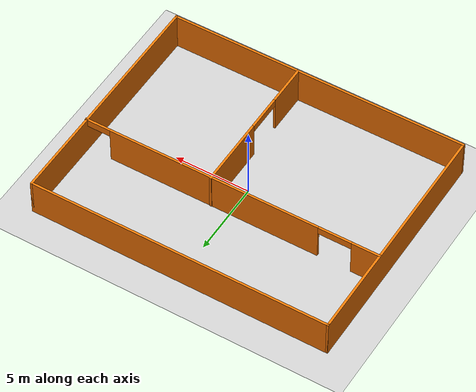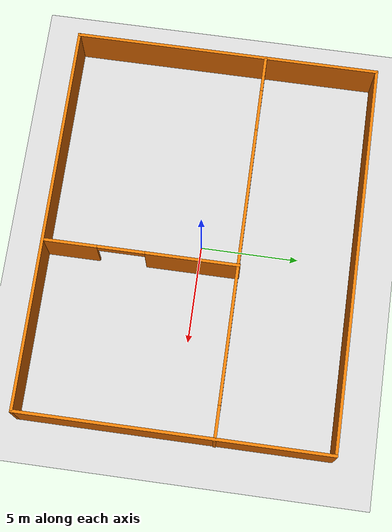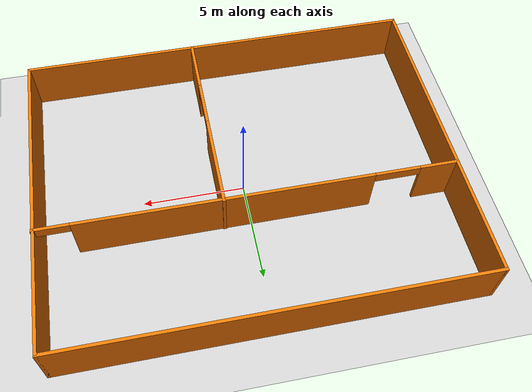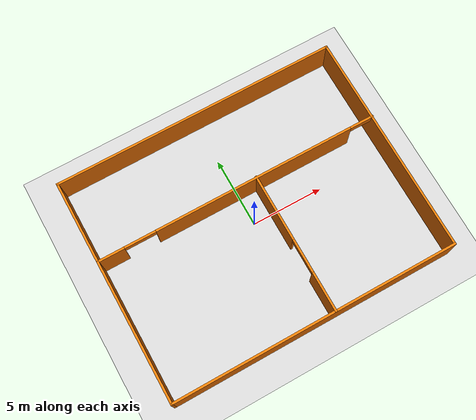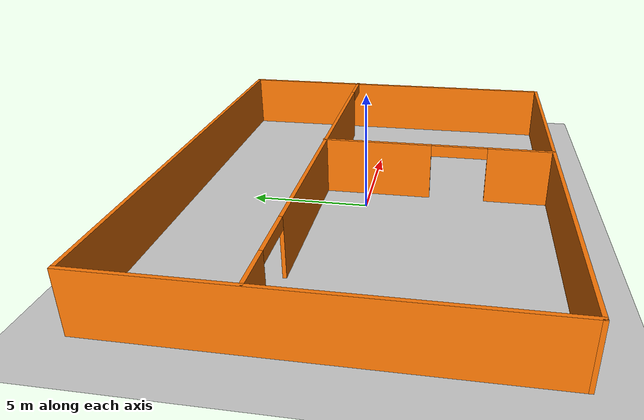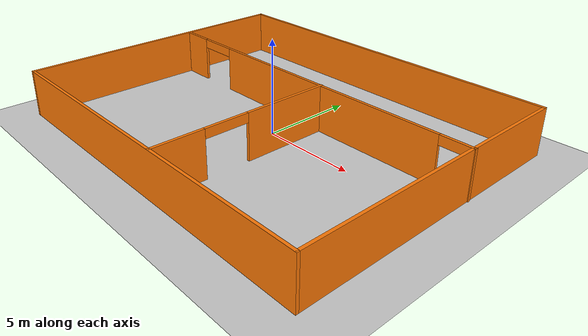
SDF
<sdf version="1.9">
 <world name="kernelbot_world">
  <physics name="1ms" type="ignored">
   <max_step_size>0.001</max_step_size>
   <real_time_factor>1</real_time_factor>
   <real_time_update_rate>1000</real_time_update_rate>
  </physics>
  <plugin name="gz::sim::systems::Physics" filename="ignition-gazebo-physics-system"/>
  <plugin name="gz::sim::systems::UserCommands" filename="ignition-gazebo-user-commands-system"/>
  <plugin name="gz::sim::systems::SceneBroadcaster" filename="ignition-gazebo-scene-broadcaster-system"/>
  <plugin name="gz::sim::systems::Contact" filename="ignition-gazebo-contact-system"/>
  <gravity>0 0 -9.8</gravity>
  <magnetic_field>6e-06 2.3e-05 -4.2e-05</magnetic_field>
  <atmosphere type="adiabatic"/>
  <scene><ambient>0.4 0.4 0.4 1</ambient><background>0.7 0.7 0.7 1</background><shadows>true</shadows></scene>
  <model name="ground_plane">
   <static>true</static>
   <link name="link">
    <collision name="collision">
     <geometry><plane><normal>0 0 1</normal><size>100 100</size></plane></geometry>
    </collision>
    <visual name="visual">
     <geometry><plane><normal>0 0 1</normal><size>100 100</size></plane></geometry>
     <material>
      <ambient>0.8 0.8 0.8 1</ambient>
      <diffuse>0.8 0.8 0.8 1</diffuse>
      <specular>0.8 0.8 0.8 1</specular>
     </material>
    </visual>
    <inertial>
     <mass>1</mass>
     <inertia><ixx>1</ixx><ixy>0</ixy><ixz>0</ixz><iyy>1</iyy><iyz>0</iyz><izz>1</izz></inertia>
    </inertial>
   </link>
  </model>
  <model name="room">
   <link name="Wall_10">
    <pose>1.30142 -2.86969 0 0 0 -1.5708</pose>
    <visual name="Wall_10_Visual_0">
     <pose>-2.60846 0 1.25 0 -0 0</pose>
     <geometry><box><size>4.78309 0.15 2.5</size></box></geometry>
     <material>
      <script><uri>file://media/gazebo.material</uri><name>Gazebo/Grey</name></script>
      <ambient>0.996078 0.47451 0.0196078 1</ambient>
     </material>
     <meta><layer>0</layer></meta>
    </visual>
    <collision name="Wall_10_Collision_0">
     <geometry><box><size>4.78309 0.15 2.5</size></box></geometry>
     <pose>-2.60846 0 1.25 0 -0 0</pose>
    </collision>
    <visual name="Wall_10_Visual_1">
     <pose>3.58997 0 1.25 0 -0 0</pose>
     <geometry><box><size>2.82006 0.15 2.5</size></box></geometry>
     <material>
      <script><uri>file://media/gazebo.material</uri><name>Gazebo/Grey</name></script>
      <ambient>0.996078 0.47451 0.0196078 1</ambient>
     </material>
     <meta><layer>0</layer></meta>
    </visual>
    <collision name="Wall_10_Collision_1">
     <geometry><box><size>2.82006 0.15 2.5</size></box></geometry>
     <pose>3.58997 0 1.25 0 -0 0</pose>
    </collision>
    <visual name="Wall_10_Visual_2">
     <pose>0.981514 0 2.25 0 -0 0</pose>
     <geometry><box><size>2.39686 0.15 0.5</size></box></geometry>
     <material>
      <script><uri>file://media/gazebo.material</uri><name>Gazebo/Grey</name></script>
      <ambient>0.996078 0.47451 0.0196078 1</ambient>
     </material>
     <meta><layer>0</layer></meta>
    </visual>
    <collision name="Wall_10_Collision_2">
     <geometry><box><size>2.39686 0.15 0.5</size></box></geometry>
     <pose>0.981514 0 2.25 0 -0 0</pose>
    </collision>
    <inertial>
     <mass>1</mass>
     <inertia><ixx>1</ixx><ixy>0</ixy><ixz>0</ixz><iyy>1</iyy><iyz>0</iyz><izz>1</izz></inertia>
    </inertial>
   </link>
   <link name="Wall_3">
    <collision name="Wall_3_Collision">
     <geometry><box><size>20 0.15 2.5</size></box></geometry>
     <pose>0 0 1.25 0 -0 0</pose>
    </collision>
    <visual name="Wall_3_Visual">
     <pose>0 0 1.25 0 -0 0</pose>
     <geometry><box><size>20 0.15 2.5</size></box></geometry>
     <material>
      <script><uri>file://media/gazebo.material</uri><name>Gazebo/Grey</name></script>
      <ambient>0.996078 0.47451 0.0196078 1</ambient>
     </material>
     <meta><layer>0</layer></meta>
    </visual>
    <pose>-0.020228 7.8 0 0 -0 0</pose>
    <inertial>
     <mass>1</mass>
     <inertia><ixx>1</ixx><ixy>0</ixy><ixz>0</ixz><iyy>1</iyy><iyz>0</iyz><izz>1</izz></inertia>
    </inertial>
   </link>
   <link name="Wall_4">
    <collision name="Wall_4_Collision">
     <geometry><box><size>15.75 0.15 2.5</size></box></geometry>
     <pose>0 0 1.25 0 -0 0</pose>
    </collision>
    <visual name="Wall_4_Visual">
     <pose>0 0 1.25 0 -0 0</pose>
     <geometry><box><size>15.75 0.15 2.5</size></box></geometry>
     <material>
      <script><uri>file://media/gazebo.material</uri><name>Gazebo/Grey</name></script>
      <ambient>0.996078 0.47451 0.0196078 1</ambient>
     </material>
     <meta><layer>0</layer></meta>
    </visual>
    <pose>9.90477 0 0 0 0 -1.5708</pose>
    <inertial>
     <mass>1</mass>
     <inertia><ixx>1</ixx><ixy>0</ixy><ixz>0</ixz><iyy>1</iyy><iyz>0</iyz><izz>1</izz></inertia>
    </inertial>
   </link>
   <link name="Wall_5">
    <collision name="Wall_5_Collision">
     <geometry><box><size>20 0.15 2.5</size></box></geometry>
     <pose>0 0 1.25 0 -0 0</pose>
    </collision>
    <visual name="Wall_5_Visual">
     <pose>0 0 1.25 0 -0 0</pose>
     <geometry><box><size>20 0.15 2.5</size></box></geometry>
     <material>
      <script><uri>file://media/gazebo.material</uri><name>Gazebo/Grey</name></script>
      <ambient>0.996078 0.47451 0.0196078 1</ambient>
     </material>
     <meta><layer>0</layer></meta>
    </visual>
    <pose>-0.020228 -7.8 0 0 -0 3.14159</pose>
    <inertial>
     <mass>1</mass>
     <inertia><ixx>1</ixx><ixy>0</ixy><ixz>0</ixz><iyy>1</iyy><iyz>0</iyz><izz>1</izz></inertia>
    </inertial>
   </link>
   <link name="Wall_6">
    <collision name="Wall_6_Collision">
     <geometry><box><size>15.75 0.15 2.5</size></box></geometry>
     <pose>0 0 1.25 0 -0 0</pose>
    </collision>
    <visual name="Wall_6_Visual">
     <pose>0 0 1.25 0 -0 0</pose>
     <geometry><box><size>15.75 0.15 2.5</size></box></geometry>
     <material>
      <script><uri>file://media/gazebo.material</uri><name>Gazebo/Grey</name></script>
      <ambient>0.996078 0.47451 0.0196078 1</ambient>
     </material>
     <meta><layer>0</layer></meta>
    </visual>
    <pose>-9.94523 0 0 0 -0 1.5708</pose>
    <inertial>
     <mass>1</mass>
     <inertia><ixx>1</ixx><ixy>0</ixy><ixz>0</ixz><iyy>1</iyy><iyz>0</iyz><izz>1</izz></inertia>
    </inertial>
   </link>
   <link name="Wall_8">
    <pose>0.020228 2.01485 0 0 -0 0</pose>
    <visual name="Wall_8_Visual_0">
     <pose>-9.06486 0 1.25 0 -0 0</pose>
     <geometry><box><size>1.87028 0.15 2.5</size></box></geometry>
     <material>
      <script><uri>file://media/gazebo.material</uri><name>Gazebo/Grey</name></script>
      <ambient>0.996078 0.47451 0.0196078 1</ambient>
     </material>
     <meta><layer>0</layer></meta>
    </visual>
    <collision name="Wall_8_Collision_0">
     <geometry><box><size>1.87028 0.15 2.5</size></box></geometry>
     <pose>-9.06486 0 1.25 0 -0 0</pose>
    </collision>
    <visual name="Wall_8_Visual_1">
     <pose>1.16209 0 1.25 0 -0 0</pose>
     <geometry><box><size>14.1945 0.15 2.5</size></box></geometry>
     <material>
      <script><uri>file://media/gazebo.material</uri><name>Gazebo/Grey</name></script>
      <ambient>0.996078 0.47451 0.0196078 1</ambient>
     </material>
     <meta><layer>0</layer></meta>
    </visual>
    <collision name="Wall_8_Collision_1">
     <geometry><box><size>14.1945 0.15 2.5</size></box></geometry>
     <pose>1.16209 0 1.25 0 -0 0</pose>
    </collision>
    <visual name="Wall_8_Visual_2">
     <pose>9.94376 0 1.25 0 -0 0</pose>
     <geometry><box><size>0.112478 0.15 2.5</size></box></geometry>
     <material>
      <script><uri>file://media/gazebo.material</uri><name>Gazebo/Grey</name></script>
      <ambient>0.996078 0.47451 0.0196078 1</ambient>
     </material>
     <meta><layer>0</layer></meta>
    </visual>
    <collision name="Wall_8_Collision_2">
     <geometry><box><size>0.112478 0.15 2.5</size></box></geometry>
     <pose>9.94376 0 1.25 0 -0 0</pose>
    </collision>
    <visual name="Wall_8_Visual_3">
     <pose>-7.03243 0 2.25 0 -0 0</pose>
     <geometry><box><size>2.19458 0.15 0.5</size></box></geometry>
     <material>
      <script><uri>file://media/gazebo.material</uri><name>Gazebo/Grey</name></script>
      <ambient>0.996078 0.47451 0.0196078 1</ambient>
     </material>
     <meta><layer>0</layer></meta>
    </visual>
    <collision name="Wall_8_Collision_3">
     <geometry><box><size>2.19458 0.15 0.5</size></box></geometry>
     <pose>-7.03243 0 2.25 0 -0 0</pose>
    </collision>
    <visual name="Wall_8_Visual_4">
     <pose>9.07342 0 2.25 0 -0 0</pose>
     <geometry><box><size>1.6282 0.15 0.5</size></box></geometry>
     <material>
      <script><uri>file://media/gazebo.material</uri><name>Gazebo/Grey</name></script>
      <ambient>0.996078 0.47451 0.0196078 1</ambient>
     </material>
     <meta><layer>0</layer></meta>
    </visual>
    <collision name="Wall_8_Collision_4">
     <geometry><box><size>1.6282 0.15 0.5</size></box></geometry>
     <pose>9.07342 0 2.25 0 -0 0</pose>
    </collision>
    <inertial>
     <mass>1</mass>
     <inertia><ixx>1</ixx><ixy>0</ixy><ixz>0</ixz><iyy>1</iyy><iyz>0</iyz><izz>1</izz></inertia>
    </inertial>
   </link>
   <static>true</static>
  </model>
  <light name="sun" type="directional">
   <pose>0 0 10 0 -0 0</pose>
   <intensity>1</intensity>
   <direction>-0.5 0.1 -0.9</direction>
   <diffuse>0.8 0.8 0.8 1</diffuse>
   <specular>0.2 0.2 0.2 1</specular>
   <attenuation>
    <range>1000</range>
    <linear>0.01</linear>
    <constant>0.90000000000000002</constant>
    <quadratic>0.001</quadratic>
   </attenuation>
   <spot><inner_angle>0</inner_angle><outer_angle>0</outer_angle><falloff>0</falloff></spot>
  </light>
 </world>
</sdf>
